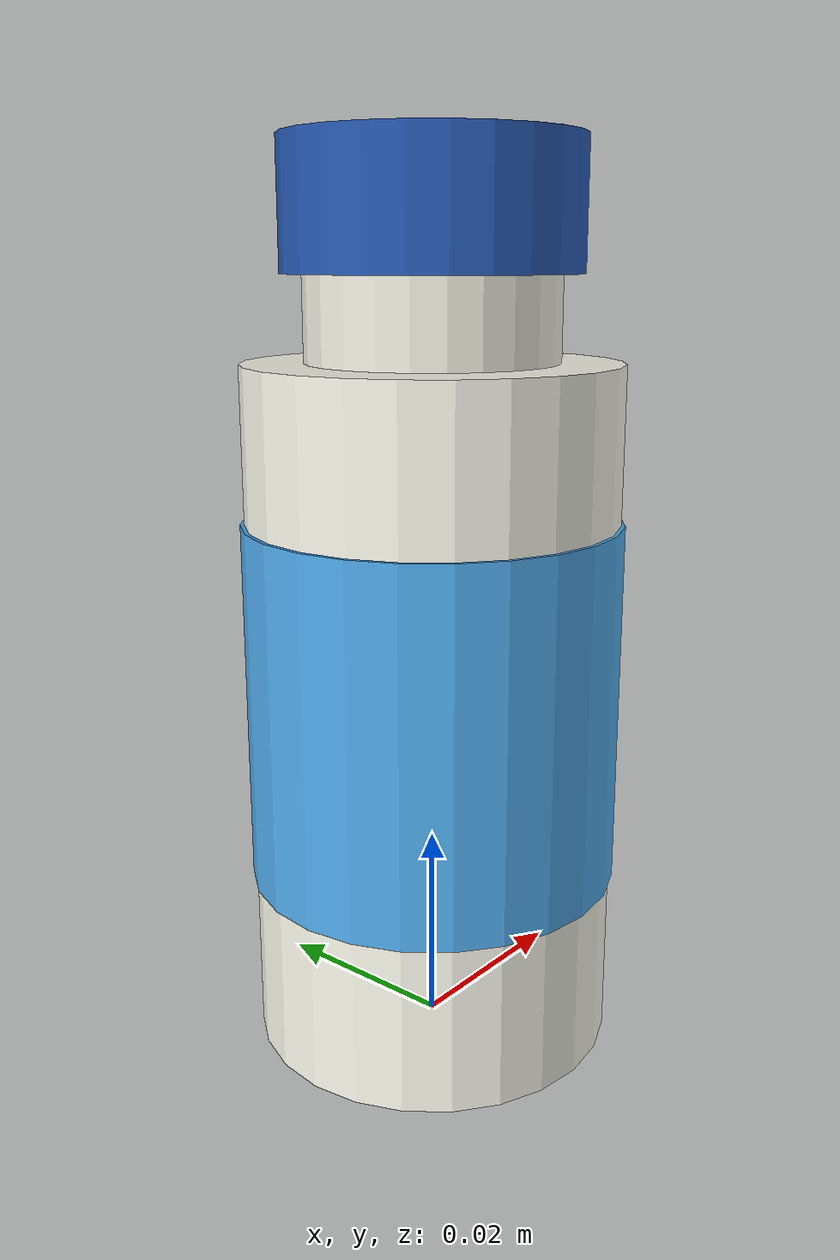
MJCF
<mujoco model="medicine_bottle">
  <worldbody>
    <body>
      <body name="object">
        <geom name="bottle_body" type="cylinder" pos="0 0 0.034"
              size="0.018 0.034" rgba="0 0 0 0"
              density="800" friction="0.95 0.3 0.1"
              solimp="0.998 0.998 0.001" solref="0.001 1" group="0"/>
        <geom name="bottle_body_visual" type="cylinder" pos="0 0 0.034"
              size="0.018 0.034" rgba="0.95 0.95 0.90 1"
              contype="0" conaffinity="0" group="1"/>
        <geom name="bottle_label" type="cylinder" pos="0 0 0.035"
              size="0.0184 0.018" rgba="0.30 0.65 0.90 1"
              contype="0" conaffinity="0" group="1"/>
        <geom name="bottle_neck" type="cylinder" pos="0 0 0.073"
              size="0.012 0.006" rgba="0.93 0.93 0.88 1"
              contype="0" conaffinity="0" group="1"/>
        <geom name="bottle_cap" type="cylinder" pos="0 0 0.082"
              size="0.014 0.006" rgba="0.15 0.35 0.70 1"
              contype="0" conaffinity="0" group="1"/>
      </body>
      <site name="bottom_site" pos="0 0 0" size="0.003" rgba="0 0 0 0"/>
      <site name="top_site" pos="0 0 0.088" size="0.003" rgba="0 0 0 0"/>
      <site name="horizontal_radius_site" pos="0.019 0 0.044"
            size="0.003" rgba="0 0 0 0"/>
    </body>
  </worldbody>
</mujoco>
